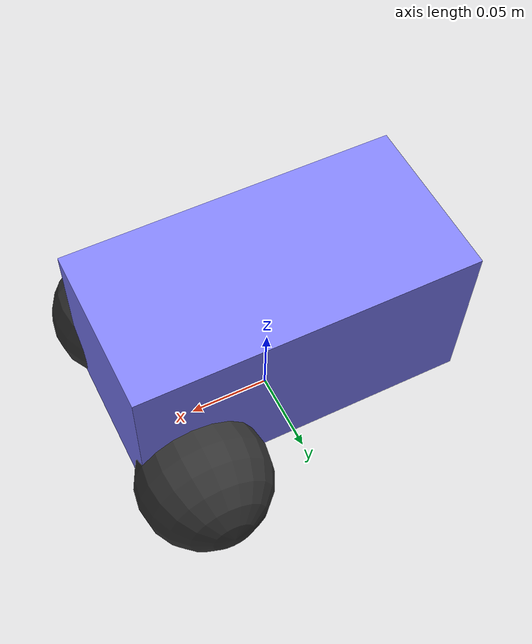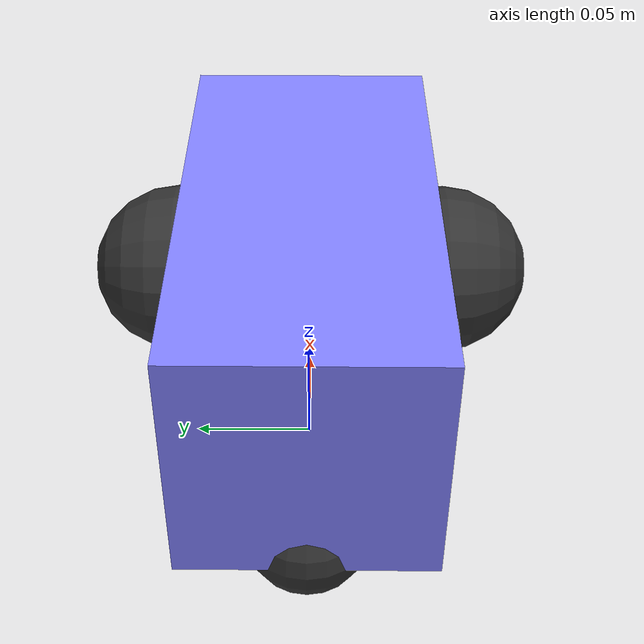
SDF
<?xml version="1.0"?>
<sdf version="1.6">
    <model name='vehicle_blue'>
        <pose>0 0 0.025 0 -0 0</pose>
        <link name='chassis'>
            <pose>0 0 0.05 0 0 0</pose>
            <inertial>
                <mass>1.14395</mass>
                <inertia>
                    <ixx>0.126164</ixx>
                    <ixy>0</ixy>
                    <ixz>0</ixz>
                    <iyy>0.416519</iyy>
                    <iyz>0</iyz>
                    <izz>0.481014</izz>
                </inertia>
            </inertial>
            <visual name='visual'>
                <geometry>
                    <box>
                        <size>0.2 0.1 0.1</size>
                    </box>
                </geometry>
                <material>
                    <ambient>0.5 0.5 1.0 1</ambient>
                    <diffuse>0.5 0.5 1.0 1</diffuse>
                    <specular>0.0 0.0 1.0 1</specular>
                </material>
            </visual>
            <collision name='collision'>
                <geometry>
                    <box>
                        <size>0.2 0.1 0.1</size>
                    </box>
                </geometry>
            </collision>
        </link>

        <link name='left_wheel'>
            <pose>0.07015 0.0625 0.014285 -1.5707 0 0</pose>
            <inertial>
                <mass>2</mass>
                <inertia>
                    <ixx>0.145833</ixx>
                    <ixy>0</ixy>
                    <ixz>0</ixz>
                    <iyy>0.145833</iyy>
                    <iyz>0</iyz>
                    <izz>0.125</izz>
                </inertia>
            </inertial>
            <visual name='visual'>
                <geometry>
                    <sphere>
                        <radius>0.039285</radius>
                    </sphere>
                </geometry>
                <material>
                    <ambient>0.2 0.2 0.2 1</ambient>
                    <diffuse>0.2 0.2 0.2 1</diffuse>
                    <specular>0.2 0.2 0.2 1</specular>
                </material>
            </visual>
            <collision name='collision'>
                <geometry>
                    <sphere>
                        <radius>0.039285</radius>
                    </sphere>
                </geometry>
                <surface>
                    <friction>
                        <ode>
                            <mu>1</mu>
                            <mu2>1</mu2>
                            <slip1>0.035</slip1>
                            <slip2>0</slip2>
                            <fdir1>0 0 1</fdir1>
                        </ode>
                        <bullet>
                            <friction>1</friction>
                            <friction2>1</friction2>
                            <rolling_friction>0.1</rolling_friction>
                            <spinning_friction>0.1</spinning_friction>
                        </bullet>
                    </friction>
                </surface>
            </collision>
        </link>

        <link name='right_wheel'>
            <pose>0.07015 -0.0625 0.014285 -1.5707 0 0</pose>
            <inertial>
                <mass>2</mass>
                <inertia>
                    <ixx>0.145833</ixx>
                    <ixy>0</ixy>
                    <ixz>0</ixz>
                    <iyy>0.145833</iyy>
                    <iyz>0</iyz>
                    <izz>0.125</izz>
                </inertia>
            </inertial>
            <visual name='visual'>
                <geometry>
                    <sphere>
                        <radius>0.039285</radius>
                    </sphere>
                </geometry>
                <material>
                    <ambient>0.2 0.2 0.2 1</ambient>
                    <diffuse>0.2 0.2 0.2 1</diffuse>
                    <specular>0.2 0.2 0.2 1</specular>
                </material>
            </visual>
            <collision name='collision'>
                <geometry>
                    <sphere>
                        <radius>0.039285</radius>
                    </sphere>
                </geometry>
                <surface>
                    <friction>
                        <ode>
                            <mu>1</mu>
                            <mu2>1</mu2>
                            <slip1>0.035</slip1>
                            <slip2>0</slip2>
                            <fdir1>0 0 1</fdir1>
                        </ode>
                        <bullet>
                            <friction>1</friction>
                            <friction2>1</friction2>
                            <rolling_friction>0.1</rolling_friction>
                            <spinning_friction>0.1</spinning_friction>
                        </bullet>
                    </friction>
                </surface>
            </collision>
        </link>

        <link name='caster'>
            <pose>-0.0796 0 0 0 -0 0</pose>
            <inertial>
                <mass>1</mass>
                <inertia>
                    <ixx>0.1</ixx>
                    <ixy>0</ixy>
                    <ixz>0</ixz>
                    <iyy>0.1</iyy>
                    <iyz>0</iyz>
                    <izz>0.1</izz>
                </inertia>
            </inertial>
            <visual name='visual'>
                <geometry>
                    <sphere>
                        <radius>0.025</radius>
                    </sphere>
                </geometry>
                <material>
                    <ambient>0.2 0.2 0.2 1</ambient>
                    <diffuse>0.2 0.2 0.2 1</diffuse>
                    <specular>0.2 0.2 0.2 1</specular>
                </material>
            </visual>
            <collision name='collision'>
                <geometry>
                    <sphere>
                        <radius>0.025</radius>
                    </sphere>
                </geometry>
            </collision>
        </link>

        <joint name='left_wheel_joint' type='revolute'>
            <parent>chassis</parent>
            <child>left_wheel</child>
            <axis>
                <xyz>0 0 1</xyz>
                <limit>
                    <lower>-1.79769e+308</lower>
                    <upper>1.79769e+308</upper>
                </limit>
            </axis>
        </joint>

        <joint name='right_wheel_joint' type='revolute'>
            <parent>chassis</parent>
            <child>right_wheel</child>
            <axis>
                <xyz>0 0 1</xyz>
                <limit>
                    <lower>-1.79769e+308</lower>
                    <upper>1.79769e+308</upper>
                </limit>
            </axis>
        </joint>

        <joint name='caster_wheel' type='ball'>
            <parent>chassis</parent>
            <child>caster</child>
        </joint>

        <link name='sensor'>
            <pose>0 0 0.06 0 0 0</pose>

            <sensor name="camera" type="camera">
                <camera>
                    <horizontal_fov>1.047</horizontal_fov>
                    <image>
                        <width>320</width>
                        <height>240</height>
                    </image>
                    <clip>
                        <near>0.1</near>
                        <far>100</far>
                    </clip>
                </camera>
                <always_on>1</always_on>
                <update_rate>30</update_rate>
                <visualize>true</visualize>
                <topic>camera</topic>
                <enable_metrics>true</enable_metrics>
            </sensor>

            <sensor name="depth_camera" type="depth_camera">
                <update_rate>10</update_rate>
                <topic>depth_camera</topic>
                <enable_metrics>true</enable_metrics>
                <camera>
                    <horizontal_fov>1.05</horizontal_fov>
                    <image>
                        <width>320</width>
                        <height>240</height>
                        <format>R_FLOAT32</format>
                    </image>
                    <clip>
                        <near>0.1</near>
                        <far>10.0</far>
                    </clip>
                </camera>
            </sensor>

            <sensor name="rgbd_camera" type="rgbd_camera">
                <camera>
                    <horizontal_fov>1.047</horizontal_fov>
                    <image>
                        <width>320</width>
                        <height>240</height>
                    </image>
                    <clip>
                        <near>0.1</near>
                        <far>100</far>
                    </clip>
                </camera>
                <always_on>1</always_on>
                <update_rate>30</update_rate>
                <visualize>true</visualize>
                <topic>rgbd_camera</topic>
                <enable_metrics>true</enable_metrics>
            </sensor>

            <sensor name="thermal_camera" type="thermal_camera">
                <camera>
                    <horizontal_fov>1.047</horizontal_fov>
                    <image>
                        <width>320</width>
                        <height>240</height>
                    </image>
                    <clip>
                        <near>0.1</near>
                        <far>100</far>
                    </clip>
                </camera>
                <always_on>1</always_on>
                <update_rate>30</update_rate>
                <visualize>true</visualize>
                <topic>thermal_camera</topic>
            </sensor>

            <sensor name='gpu_lidar' type='gpu_lidar'>
                <topic>lidar</topic>
                <update_rate>10</update_rate>
                <enable_metrics>true</enable_metrics>
                <ray>
                    <scan>
                        <horizontal>
                            <samples>640</samples>
                            <resolution>1</resolution>
                            <min_angle>-1.396263</min_angle>
                            <max_angle>1.396263</max_angle>
                        </horizontal>
                        <vertical>
                            <samples>1</samples>
                            <resolution>0.01</resolution>
                            <min_angle>0</min_angle>
                            <max_angle>0</max_angle>
                        </vertical>
                    </scan>
                    <range>
                        <min>0.08</min>
                        <max>10.0</max>
                        <resolution>0.01</resolution>
                    </range>
                </ray>
                <alwaysOn>1</alwaysOn>
                <visualize>true</visualize>
            </sensor>

            <sensor name="altimeter" type="altimeter">
                <always_on>1</always_on>
                <update_rate>30</update_rate>
                <visualize>true</visualize>
                <topic>altimeter</topic>
                <enable_metrics>true</enable_metrics>
                <altimeter>
                    <vertical_position>
                        <noise type="gaussian">
                            <mean>0.1</mean>
                            <stddev>0.2</stddev>
                        </noise>
                    </vertical_position>
                    <vertical_velocity>
                        <noise type="gaussian">
                            <mean>0.2</mean>
                            <stddev>0.1</stddev>
                        </noise>
                    </vertical_velocity>
                </altimeter>
            </sensor>

            <sensor name="air_pressure" type="air_pressure">
                <always_on>1</always_on>
                <update_rate>30</update_rate>
                <visualize>true</visualize>
                <topic>air_pressure</topic>
                <enable_metrics>true</enable_metrics>
                <air_pressure>
                    <reference_altitude>123</reference_altitude>
                    <pressure>
                        <noise type="gaussian">
                            <mean>0.2</mean>
                            <stddev>0.1</stddev>
                        </noise>
                    </pressure>
                </air_pressure>
            </sensor>

            <sensor name="imu" type="imu">
                <always_on>1</always_on>
                <update_rate>100</update_rate>
                <visualize>true</visualize>
                <topic>imu</topic>
                <enable_metrics>true</enable_metrics>
            </sensor>

            <sensor name="magnetometer" type="magnetometer">
                <always_on>1</always_on>
                <update_rate>100</update_rate>
                <visualize>true</visualize>
                <topic>magnetometer</topic>
                <enable_metrics>true</enable_metrics>
                <magnetometer>
                    <x>
                        <noise type="gaussian">
                            <mean>0.0</mean>
                            <stddev>0.1</stddev>
                        </noise>
                    </x>
                    <y>
                        <noise type="gaussian">
                            <mean>0.0</mean>
                            <stddev>0.1</stddev>
                        </noise>
                    </y>
                    <z>
                        <noise type="gaussian">
                            <mean>0.0</mean>
                            <stddev>0.1</stddev>
                        </noise>
                    </z>
                </magnetometer>
            </sensor>

            <sensor name="force_torque" type="force_torque">
                <update_rate>10</update_rate>
            </sensor>
        </link>
        <joint name='sensor_joint' type='fixed'>
            <parent>chassis</parent>
            <child>sensor</child>
        </joint>

        <plugin
            filename="gz-sim-diff-drive-system"
            name="gz::sim::systems::DiffDrive">
            <left_joint>left_wheel_joint</left_joint>
            <right_joint>right_wheel_joint</right_joint>
            <tf_topic>tf</tf_topic>
            <wheel_separation>1.25</wheel_separation>
            <wheel_radius>0.3</wheel_radius>
            <odom_publish_frequency>1</odom_publish_frequency>
            <max_linear_acceleration>1</max_linear_acceleration>
            <min_linear_acceleration>-1</min_linear_acceleration>
            <max_angular_acceleration>2</max_angular_acceleration>
            <min_angular_acceleration>-2</min_angular_acceleration>
            <max_linear_velocity>0.5</max_linear_velocity>
            <min_linear_velocity>-0.5</min_linear_velocity>
            <max_angular_velocity>1</max_angular_velocity>
            <min_angular_velocity>-1</min_angular_velocity>
        </plugin>

    </model>
</sdf>
